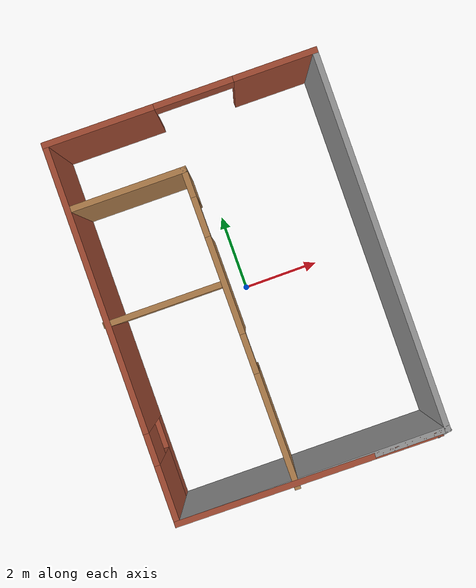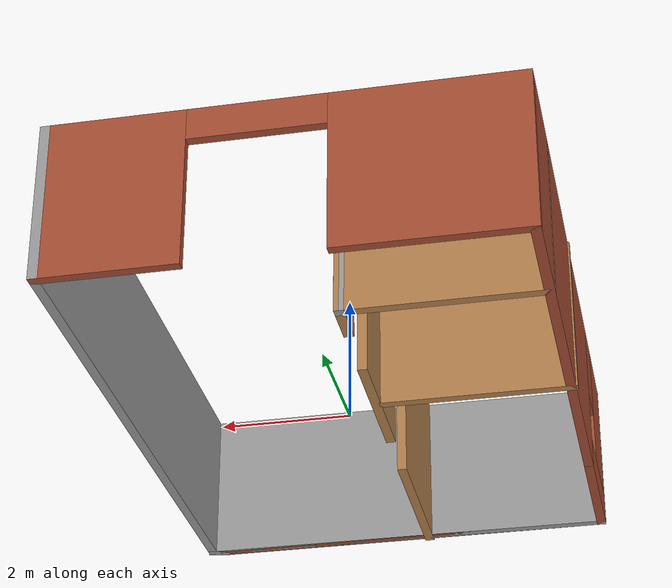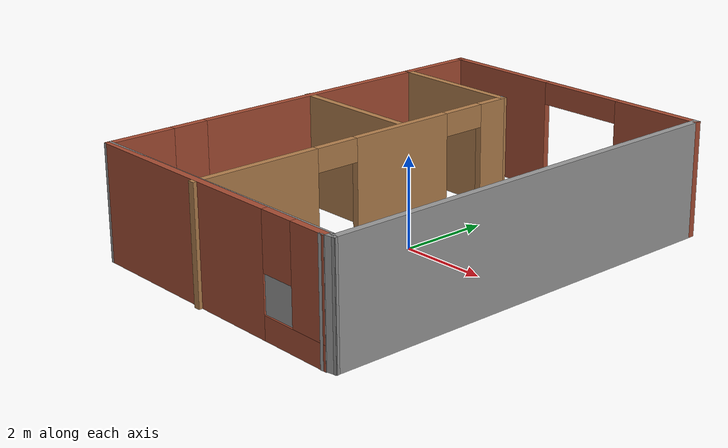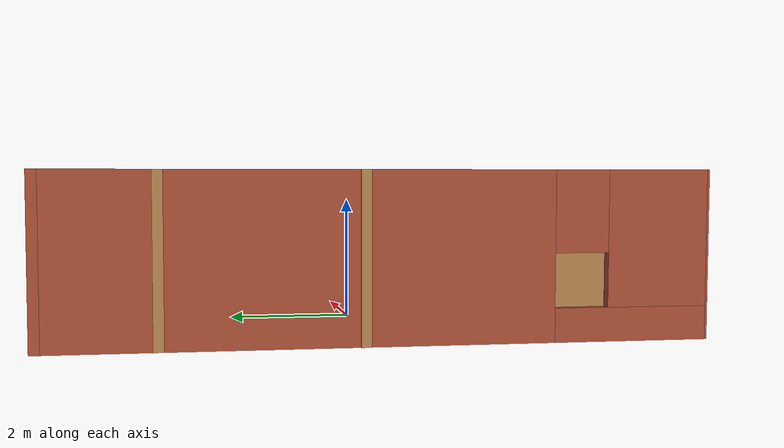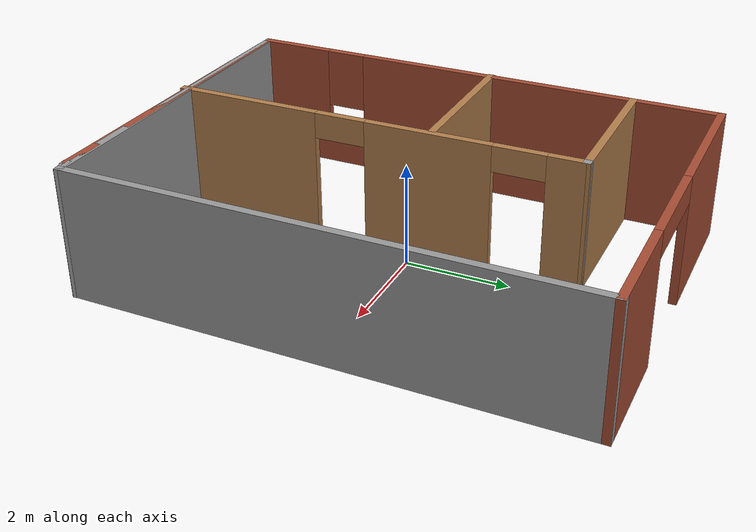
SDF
<?xml version='1.0'?>
<sdf version='1.6'>
  <model name='myHome'>
    <pose frame=''>-0.005955 -0.049849 0 0 -0 0</pose>
    <link name='Wall_1'>
      <pose frame=''>-0.099841 -4.75027 0 0 0 -0.007006</pose>
      <visual name='Wall_1_Visual_0'>
        <pose frame=''>-0.850536 0 1.25 0 -0 0</pose>
        <geometry>
          <box>
            <size>5.04893 0.15 2.5</size>
          </box>
        </geometry>
        <material>
          <script>
            <uri>file://media/materials/scripts/gazebo.material</uri>
            <name>Gazebo/Bricks</name>
          </script>
          <ambient>1 1 1 1</ambient>
        </material>
        <meta>
          <layer>0</layer>
        </meta>
      </visual>
      <collision name='Wall_1_Collision_0'>
        <geometry>
          <box>
            <size>5.04893 0.15 2.5</size>
          </box>
        </geometry>
        <pose frame=''>-0.850536 0 1.25 0 -0 0</pose>
      </collision>
      <visual name='Wall_1_Visual_1'>
        <pose frame=''>2.52446 0 0.25 0 -0 0</pose>
        <geometry>
          <box>
            <size>1.70107 0.15 0.5</size>
          </box>
        </geometry>
        <material>
          <script>
            <uri>file://media/materials/scripts/gazebo.material</uri>
            <name>Gazebo/Bricks</name>
          </script>
          <ambient>1 1 1 1</ambient>
        </material>
        <meta>
          <layer>0</layer>
        </meta>
      </visual>
      <collision name='Wall_1_Collision_1'>
        <geometry>
          <box>
            <size>1.70107 0.15 0.5</size>
          </box>
        </geometry>
        <pose frame=''>2.52446 0 0.25 0 -0 0</pose>
      </collision>
      <visual name='Wall_1_Visual_2'>
        <pose frame=''>2.92446 0 1.5 0 -0 0</pose>
        <geometry>
          <box>
            <size>0.901073 0.15 2</size>
          </box>
        </geometry>
        <material>
          <script>
            <uri>file://media/materials/scripts/gazebo.material</uri>
            <name>Gazebo/Bricks</name>
          </script>
          <ambient>1 1 1 1</ambient>
        </material>
        <meta>
          <layer>0</layer>
        </meta>
      </visual>
      <collision name='Wall_1_Collision_2'>
        <geometry>
          <box>
            <size>0.901073 0.15 2</size>
          </box>
        </geometry>
        <pose frame=''>2.92446 0 1.5 0 -0 0</pose>
      </collision>
      <visual name='Wall_1_Visual_3'>
        <pose frame=''>2.07393 0 1.9 0 -0 0</pose>
        <geometry>
          <box>
            <size>0.8 0.15 1.2</size>
          </box>
        </geometry>
        <material>
          <script>
            <uri>file://media/materials/scripts/gazebo.material</uri>
            <name>Gazebo/Bricks</name>
          </script>
          <ambient>1 1 1 1</ambient>
        </material>
        <meta>
          <layer>0</layer>
        </meta>
      </visual>
      <collision name='Wall_1_Collision_3'>
        <geometry>
          <box>
            <size>0.8 0.15 1.2</size>
          </box>
        </geometry>
        <pose frame=''>2.07393 0 1.9 0 -0 0</pose>
      </collision>
    </link>
    <link name='Wall_10'>
      <pose frame=''>0.005955 4.82685 0 0 -0 3.14159</pose>
      <visual name='Wall_10_Visual_0'>
        <pose frame=''>-2.41302 0 1.25 0 -0 0</pose>
        <geometry>
          <box>
            <size>2.13597 0.15 2.5</size>
          </box>
        </geometry>
        <material>
          <script>
            <uri>file://media/materials/scripts/gazebo.material</uri>
            <name>Gazebo/Bricks</name>
          </script>
          <ambient>1 1 1 1</ambient>
        </material>
        <meta>
          <layer>0</layer>
        </meta>
      </visual>
      <collision name='Wall_10_Collision_0'>
        <geometry>
          <box>
            <size>2.13597 0.15 2.5</size>
          </box>
        </geometry>
        <pose frame=''>-2.41302 0 1.25 0 -0 0</pose>
      </collision>
      <visual name='Wall_10_Visual_1'>
        <pose frame=''>2.06798 0 1.25 0 -0 0</pose>
        <geometry>
          <box>
            <size>2.82604 0.15 2.5</size>
          </box>
        </geometry>
        <material>
          <script>
            <uri>file://media/materials/scripts/gazebo.material</uri>
            <name>Gazebo/Bricks</name>
          </script>
          <ambient>1 1 1 1</ambient>
        </material>
        <meta>
          <layer>0</layer>
        </meta>
      </visual>
      <collision name='Wall_10_Collision_1'>
        <geometry>
          <box>
            <size>2.82604 0.15 2.5</size>
          </box>
        </geometry>
        <pose frame=''>2.06798 0 1.25 0 -0 0</pose>
      </collision>
      <visual name='Wall_10_Visual_2'>
        <pose frame=''>-0.345035 0 2.25 0 -0 0</pose>
        <geometry>
          <box>
            <size>2 0.15 0.5</size>
          </box>
        </geometry>
        <material>
          <script>
            <uri>file://media/materials/scripts/gazebo.material</uri>
            <name>Gazebo/Bricks</name>
          </script>
          <ambient>1 1 1 1</ambient>
        </material>
        <meta>
          <layer>0</layer>
        </meta>
      </visual>
      <collision name='Wall_10_Collision_2'>
        <geometry>
          <box>
            <size>2 0.15 0.5</size>
          </box>
        </geometry>
        <pose frame=''>-0.345035 0 2.25 0 -0 0</pose>
      </collision>
    </link>
    <link name='Wall_12'>
      <pose frame=''>-3.40004 0.049849 0 0 0 -1.5708</pose>
      <visual name='Wall_12_Visual_0'>
        <pose frame=''>-1.17199 0 1.25 0 -0 0</pose>
        <geometry>
          <box>
            <size>7.36003 0.15 2.5</size>
          </box>
        </geometry>
        <material>
          <script>
            <uri>file://media/materials/scripts/gazebo.material</uri>
            <name>Gazebo/Bricks</name>
          </script>
          <ambient>1 1 1 1</ambient>
        </material>
        <meta>
          <layer>0</layer>
        </meta>
      </visual>
      <collision name='Wall_12_Collision_0'>
        <geometry>
          <box>
            <size>7.36003 0.15 2.5</size>
          </box>
        </geometry>
        <pose frame=''>-1.17199 0 1.25 0 -0 0</pose>
      </collision>
      <visual name='Wall_12_Visual_1'>
        <pose frame=''>3.68001 0 0.25 0 -0 0</pose>
        <geometry>
          <box>
            <size>2.34397 0.15 0.5</size>
          </box>
        </geometry>
        <material>
          <script>
            <uri>file://media/materials/scripts/gazebo.material</uri>
            <name>Gazebo/Bricks</name>
          </script>
          <ambient>1 1 1 1</ambient>
        </material>
        <meta>
          <layer>0</layer>
        </meta>
      </visual>
      <collision name='Wall_12_Collision_1'>
        <geometry>
          <box>
            <size>2.34397 0.15 0.5</size>
          </box>
        </geometry>
        <pose frame=''>3.68001 0 0.25 0 -0 0</pose>
      </collision>
      <visual name='Wall_12_Visual_2'>
        <pose frame=''>4.08001 0 1.5 0 -0 0</pose>
        <geometry>
          <box>
            <size>1.54397 0.15 2</size>
          </box>
        </geometry>
        <material>
          <script>
            <uri>file://media/materials/scripts/gazebo.material</uri>
            <name>Gazebo/Bricks</name>
          </script>
          <ambient>1 1 1 1</ambient>
        </material>
        <meta>
          <layer>0</layer>
        </meta>
      </visual>
      <collision name='Wall_12_Collision_2'>
        <geometry>
          <box>
            <size>1.54397 0.15 2</size>
          </box>
        </geometry>
        <pose frame=''>4.08001 0 1.5 0 -0 0</pose>
      </collision>
      <visual name='Wall_12_Visual_3'>
        <pose frame=''>2.90803 0 1.9 0 -0 0</pose>
        <geometry>
          <box>
            <size>0.8 0.15 1.2</size>
          </box>
        </geometry>
        <material>
          <script>
            <uri>file://media/materials/scripts/gazebo.material</uri>
            <name>Gazebo/Bricks</name>
          </script>
          <ambient>1 1 1 1</ambient>
        </material>
        <meta>
          <layer>0</layer>
        </meta>
      </visual>
      <collision name='Wall_12_Collision_3'>
        <geometry>
          <box>
            <size>0.8 0.15 1.2</size>
          </box>
        </geometry>
        <pose frame=''>2.90803 0 1.9 0 -0 0</pose>
      </collision>
    </link>
    <link name='Wall_18'>
      <collision name='Wall_18_Collision'>
        <geometry>
          <box>
            <size>3.08 0.15 2.5</size>
          </box>
        </geometry>
        <pose frame=''>0 0 1.25 0 -0 0</pose>
      </collision>
      <visual name='Wall_18_Visual'>
        <pose frame=''>0 0 1.25 0 -0 0</pose>
        <geometry>
          <box>
            <size>3.08 0.15 2.5</size>
          </box>
        </geometry>
        <material>
          <script>
            <uri>file://media/materials/scripts/gazebo.material</uri>
            <name>Gazebo/Wood</name>
          </script>
          <ambient>1 1 1 1</ambient>
        </material>
        <meta>
          <layer>0</layer>
        </meta>
      </visual>
      <pose frame=''>-1.93504 3.17985 0 0 -0 0</pose>
    </link>
    <link name='Wall_2'>
      <collision name='Wall_2_Collision'>
        <geometry>
          <box>
            <size>0.15 0.15 2.5</size>
          </box>
        </geometry>
        <pose frame=''>0 0 1.25 0 -0 0</pose>
      </collision>
      <visual name='Wall_2_Visual'>
        <pose frame=''>0 0 1.25 0 -0 0</pose>
        <geometry>
          <box>
            <size>0.15 0.15 2.5</size>
          </box>
        </geometry>
        <material>
          <script>
            <uri>file://media/materials/scripts/gazebo.material</uri>
            <name>Gazebo/Grey</name>
          </script>
          <ambient>1 1 1 1</ambient>
        </material>
        <meta>
          <layer>0</layer>
        </meta>
      </visual>
      <pose frame=''>3.20036 -4.77339 0 0 -0 0</pose>
    </link>
    <link name='Wall_22'>
      <pose frame=''>-0.44523 -0.823371 0 0 -0 1.57699</pose>
      <visual name='Wall_22_Visual_0'>
        <pose frame=''>-2.61535 0 1.25 0 -0 0</pose>
        <geometry>
          <box>
            <size>2.9259 0.15 2.5</size>
          </box>
        </geometry>
        <material>
          <script>
            <uri>file://media/materials/scripts/gazebo.material</uri>
            <name>Gazebo/Wood</name>
          </script>
          <ambient>1 1 1 1</ambient>
        </material>
        <meta>
          <layer>0</layer>
        </meta>
      </visual>
      <collision name='Wall_22_Collision_0'>
        <geometry>
          <box>
            <size>2.9259 0.15 2.5</size>
          </box>
        </geometry>
        <pose frame=''>-2.61535 0 1.25 0 -0 0</pose>
      </collision>
      <visual name='Wall_22_Visual_1'>
        <pose frame=''>1.07716 0 1.25 0 -0 0</pose>
        <geometry>
          <box>
            <size>2.45911 0.15 2.5</size>
          </box>
        </geometry>
        <material>
          <script>
            <uri>file://media/materials/scripts/gazebo.material</uri>
            <name>Gazebo/Wood</name>
          </script>
          <ambient>1 1 1 1</ambient>
        </material>
        <meta>
          <layer>0</layer>
        </meta>
      </visual>
      <collision name='Wall_22_Collision_1'>
        <geometry>
          <box>
            <size>2.45911 0.15 2.5</size>
          </box>
        </geometry>
        <pose frame=''>1.07716 0 1.25 0 -0 0</pose>
      </collision>
      <visual name='Wall_22_Visual_2'>
        <pose frame=''>3.69251 0 1.25 0 -0 0</pose>
        <geometry>
          <box>
            <size>0.77158 0.15 2.5</size>
          </box>
        </geometry>
        <material>
          <script>
            <uri>file://media/materials/scripts/gazebo.material</uri>
            <name>Gazebo/Wood</name>
          </script>
          <ambient>1 1 1 1</ambient>
        </material>
        <meta>
          <layer>0</layer>
        </meta>
      </visual>
      <collision name='Wall_22_Collision_2'>
        <geometry>
          <box>
            <size>0.77158 0.15 2.5</size>
          </box>
        </geometry>
        <pose frame=''>3.69251 0 1.25 0 -0 0</pose>
      </collision>
      <visual name='Wall_22_Visual_3'>
        <pose frame=''>-0.652396 0 2.25 0 -0 0</pose>
        <geometry>
          <box>
            <size>1 0.15 0.5</size>
          </box>
        </geometry>
        <material>
          <script>
            <uri>file://media/materials/scripts/gazebo.material</uri>
            <name>Gazebo/Wood</name>
          </script>
          <ambient>1 1 1 1</ambient>
        </material>
        <meta>
          <layer>0</layer>
        </meta>
      </visual>
      <collision name='Wall_22_Collision_3'>
        <geometry>
          <box>
            <size>1 0.15 0.5</size>
          </box>
        </geometry>
        <pose frame=''>-0.652396 0 2.25 0 -0 0</pose>
      </collision>
      <visual name='Wall_22_Visual_4'>
        <pose frame=''>2.80672 0 2.25 0 -0 0</pose>
        <geometry>
          <box>
            <size>1 0.15 0.5</size>
          </box>
        </geometry>
        <material>
          <script>
            <uri>file://media/materials/scripts/gazebo.material</uri>
            <name>Gazebo/Wood</name>
          </script>
          <ambient>1 1 1 1</ambient>
        </material>
        <meta>
          <layer>0</layer>
        </meta>
      </visual>
      <collision name='Wall_22_Collision_4'>
        <geometry>
          <box>
            <size>1 0.15 0.5</size>
          </box>
        </geometry>
        <pose frame=''>2.80672 0 2.25 0 -0 0</pose>
      </collision>
    </link>
    <link name='Wall_23'>
      <collision name='Wall_23_Collision'>
        <geometry>
          <box>
            <size>0.15 0.15 2.5</size>
          </box>
        </geometry>
        <pose frame=''>0 0 1.25 0 -0 0</pose>
      </collision>
      <visual name='Wall_23_Visual'>
        <pose frame=''>0 0 1.25 0 -0 0</pose>
        <geometry>
          <box>
            <size>0.15 0.15 2.5</size>
          </box>
        </geometry>
        <material>
          <script>
            <uri>file://media/materials/scripts/gazebo.material</uri>
            <name>Gazebo/Grey</name>
          </script>
          <ambient>1 1 1 1</ambient>
        </material>
        <meta>
          <layer>0</layer>
        </meta>
      </visual>
      <pose frame=''>-0.470045 3.17985 0 0 -0 0</pose>
    </link>
    <link name='Wall_25'>
      <collision name='Wall_25_Collision'>
        <geometry>
          <box>
            <size>3 0.15 2.5</size>
          </box>
        </geometry>
        <pose frame=''>0 0 1.25 0 -0 0</pose>
      </collision>
      <visual name='Wall_25_Visual'>
        <pose frame=''>0 0 1.25 0 -0 0</pose>
        <geometry>
          <box>
            <size>3 0.15 2.5</size>
          </box>
        </geometry>
        <material>
          <script>
            <uri>file://media/materials/scripts/gazebo.material</uri>
            <name>Gazebo/Wood</name>
          </script>
          <ambient>1 1 1 1</ambient>
        </material>
        <meta>
          <layer>0</layer>
        </meta>
      </visual>
      <pose frame=''>-2.00124 0.307247 0 0 -0 0</pose>
    </link>
    <link name='Wall_3'>
      <collision name='Wall_3_Collision'>
        <geometry>
          <box>
            <size>0.366587 0.15 2.5</size>
          </box>
        </geometry>
        <pose frame=''>0 0 1.25 0 -0 0</pose>
      </collision>
      <visual name='Wall_3_Visual'>
        <pose frame=''>0 0 1.25 0 -0 0</pose>
        <geometry>
          <box>
            <size>0.366587 0.15 2.5</size>
          </box>
        </geometry>
        <material>
          <script>
            <uri>file://media/materials/scripts/gazebo.material</uri>
            <name>Gazebo/Grey</name>
          </script>
          <ambient>1 1 1 1</ambient>
        </material>
        <meta>
          <layer>0</layer>
        </meta>
      </visual>
      <pose frame=''>3.30616 -4.75027 0 0 -0 0.215151</pose>
    </link>
    <link name='Wall_4'>
      <collision name='Wall_4_Collision'>
        <geometry>
          <box>
            <size>9.70441 0.15 2.5</size>
          </box>
        </geometry>
        <pose frame=''>0 0 1.25 0 -0 0</pose>
      </collision>
      <visual name='Wall_4_Visual'>
        <pose frame=''>0 0 1.25 0 -0 0</pose>
        <geometry>
          <box>
            <size>9.70441 0.15 2.5</size>
          </box>
        </geometry>
        <material>
          <script>
            <uri>file://media/materials/scripts/gazebo.material</uri>
            <name>Gazebo/Grey</name>
          </script>
          <ambient>1 1 1 1</ambient>
        </material>
        <meta>
          <layer>0</layer>
        </meta>
      </visual>
      <pose frame=''>3.41195 0.049849 0 0 -0 1.5708</pose>
    </link>
    <link name='Wall_6'>
      <collision name='Wall_6_Collision'>
        <geometry>
          <box>
            <size>6.962 0.15 2.5</size>
          </box>
        </geometry>
        <pose frame=''>0 0 1.25 0 -0 0</pose>
      </collision>
      <visual name='Wall_6_Visual'>
        <pose frame=''>0 0 1.25 0 -0 0</pose>
        <geometry>
          <box>
            <size>6.962 0.15 2.5</size>
          </box>
        </geometry>
        <material>
          <script>
            <uri>file://media/materials/scripts/gazebo.material</uri>
            <name>Gazebo/Grey</name>
          </script>
          <ambient>1 1 1 1</ambient>
        </material>
        <meta>
          <layer>0</layer>
        </meta>
      </visual>
      <pose frame=''>0.005955 -4.72715 0 0 -0 0</pose>
    </link>
    <link name='Wall_8'>
      <collision name='Wall_8_Collision'>
        <geometry>
          <box>
            <size>9.70441 0.15 2.5</size>
          </box>
        </geometry>
        <pose frame=''>0 0 1.25 0 -0 0</pose>
      </collision>
      <visual name='Wall_8_Visual'>
        <pose frame=''>0 0 1.25 0 -0 0</pose>
        <geometry>
          <box>
            <size>9.70441 0.15 2.5</size>
          </box>
        </geometry>
        <material>
          <script>
            <uri>file://media/materials/scripts/gazebo.material</uri>
            <name>Gazebo/Bricks</name>
          </script>
          <ambient>1 1 1 1</ambient>
        </material>
        <meta>
          <layer>0</layer>
        </meta>
      </visual>
      <pose frame=''>3.41195 0.049849 0 0 -0 1.5708</pose>
    </link>
    <static>1</static>
  </model>
</sdf>
